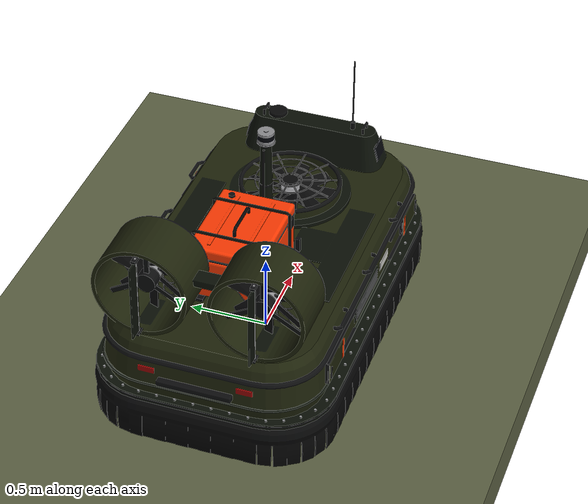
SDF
<?xml version="1.0"?>
<!-- GENERATED by hover_gazebo/scripts/gen_test_worlds_v2.py -->
<sdf version="1.9">
  <world name="v2_hover_test">
    <physics name="1ms" type="dart">
      <max_step_size>0.001</max_step_size>
      <real_time_factor>1.0</real_time_factor>
      <dart><collision_detector>bullet</collision_detector></dart>
    </physics>
    <gravity>0 0 -9.81</gravity>
    <spherical_coordinates>
      <surface_model>EARTH_WGS84</surface_model>
      <latitude_deg>1.4466</latitude_deg><longitude_deg>103.7300</longitude_deg>
      <elevation>0</elevation><heading_deg>0</heading_deg>
    </spherical_coordinates>

    <plugin filename="gz-sim-physics-system" name="gz::sim::systems::Physics"/>
    <plugin filename="gz-sim-user-commands-system" name="gz::sim::systems::UserCommands"/>
    <plugin filename="gz-sim-scene-broadcaster-system" name="gz::sim::systems::SceneBroadcaster"/>
    <plugin filename="gz-sim-imu-system" name="gz::sim::systems::Imu"/>
    <plugin filename="gz-sim-navsat-system" name="gz::sim::systems::NavSat"/>
    <plugin filename="gz-sim-sensors-system" name="gz::sim::systems::Sensors">
      <render_engine>ogre2</render_engine>
    </plugin>
    <plugin filename="tidal_vehicle_plugins" name="hover::TerrainZones">
      <ground_height>0.0</ground_height>
    </plugin>
    <plugin filename="tidal_vehicle_plugins" name="hover::ScriptedCommands">
      <command><time>0.5</time><topic>/model/hovercraft_v2/hover_enabled</topic><type>gz.msgs.Boolean</type><data>data: true</data></command>
      <command><time>3.0</time><topic>/model/hovercraft_v2/tracks_cmd</topic><type>gz.msgs.Double</type><data>data: 0.250</data></command>
      <command><time>26.0</time><topic>/model/hovercraft_v2/cmd_vel_hover</topic><type>gz.msgs.Twist</type><data>linear { x: 2.0 } angular { z: 0.0 }</data></command>
      <command><time>26.2</time><topic>/model/hovercraft_v2/cmd_vel_hover</topic><type>gz.msgs.Twist</type><data>linear { x: 2.0 } angular { z: 0.0 }</data></command>
      <command><time>26.4</time><topic>/model/hovercraft_v2/cmd_vel_hover</topic><type>gz.msgs.Twist</type><data>linear { x: 2.0 } angular { z: 0.0 }</data></command>
      <command><time>26.6</time><topic>/model/hovercraft_v2/cmd_vel_hover</topic><type>gz.msgs.Twist</type><data>linear { x: 2.0 } angular { z: 0.0 }</data></command>
      <command><time>26.8</time><topic>/model/hovercraft_v2/cmd_vel_hover</topic><type>gz.msgs.Twist</type><data>linear { x: 2.0 } angular { z: 0.0 }</data></command>
      <command><time>27.0</time><topic>/model/hovercraft_v2/cmd_vel_hover</topic><type>gz.msgs.Twist</type><data>linear { x: 2.0 } angular { z: 0.0 }</data></command>
      <command><time>27.2</time><topic>/model/hovercraft_v2/cmd_vel_hover</topic><type>gz.msgs.Twist</type><data>linear { x: 2.0 } angular { z: 0.0 }</data></command>
      <command><time>27.4</time><topic>/model/hovercraft_v2/cmd_vel_hover</topic><type>gz.msgs.Twist</type><data>linear { x: 2.0 } angular { z: 0.0 }</data></command>
      <command><time>27.6</time><topic>/model/hovercraft_v2/cmd_vel_hover</topic><type>gz.msgs.Twist</type><data>linear { x: 2.0 } angular { z: 0.0 }</data></command>
      <command><time>27.8</time><topic>/model/hovercraft_v2/cmd_vel_hover</topic><type>gz.msgs.Twist</type><data>linear { x: 2.0 } angular { z: 0.0 }</data></command>
      <command><time>28.0</time><topic>/model/hovercraft_v2/cmd_vel_hover</topic><type>gz.msgs.Twist</type><data>linear { x: 2.0 } angular { z: 0.0 }</data></command>
      <command><time>28.2</time><topic>/model/hovercraft_v2/cmd_vel_hover</topic><type>gz.msgs.Twist</type><data>linear { x: 2.0 } angular { z: 0.0 }</data></command>
      <command><time>28.4</time><topic>/model/hovercraft_v2/cmd_vel_hover</topic><type>gz.msgs.Twist</type><data>linear { x: 2.0 } angular { z: 0.0 }</data></command>
      <command><time>28.6</time><topic>/model/hovercraft_v2/cmd_vel_hover</topic><type>gz.msgs.Twist</type><data>linear { x: 2.0 } angular { z: 0.0 }</data></command>
      <command><time>28.8</time><topic>/model/hovercraft_v2/cmd_vel_hover</topic><type>gz.msgs.Twist</type><data>linear { x: 2.0 } angular { z: 0.0 }</data></command>
      <command><time>29.0</time><topic>/model/hovercraft_v2/cmd_vel_hover</topic><type>gz.msgs.Twist</type><data>linear { x: 2.0 } angular { z: 0.0 }</data></command>
      <command><time>29.2</time><topic>/model/hovercraft_v2/cmd_vel_hover</topic><type>gz.msgs.Twist</type><data>linear { x: 2.0 } angular { z: 0.0 }</data></command>
      <command><time>29.4</time><topic>/model/hovercraft_v2/cmd_vel_hover</topic><type>gz.msgs.Twist</type><data>linear { x: 2.0 } angular { z: 0.0 }</data></command>
      <command><time>29.6</time><topic>/model/hovercraft_v2/cmd_vel_hover</topic><type>gz.msgs.Twist</type><data>linear { x: 2.0 } angular { z: 0.0 }</data></command>
      <command><time>29.8</time><topic>/model/hovercraft_v2/cmd_vel_hover</topic><type>gz.msgs.Twist</type><data>linear { x: 2.0 } angular { z: 0.0 }</data></command>
      <command><time>30.0</time><topic>/model/hovercraft_v2/cmd_vel_hover</topic><type>gz.msgs.Twist</type><data>linear { x: 2.0 } angular { z: 0.0 }</data></command>
      <command><time>30.2</time><topic>/model/hovercraft_v2/cmd_vel_hover</topic><type>gz.msgs.Twist</type><data>linear { x: 2.0 } angular { z: 0.0 }</data></command>
      <command><time>30.4</time><topic>/model/hovercraft_v2/cmd_vel_hover</topic><type>gz.msgs.Twist</type><data>linear { x: 2.0 } angular { z: 0.0 }</data></command>
      <command><time>30.6</time><topic>/model/hovercraft_v2/cmd_vel_hover</topic><type>gz.msgs.Twist</type><data>linear { x: 2.0 } angular { z: 0.0 }</data></command>
      <command><time>30.8</time><topic>/model/hovercraft_v2/cmd_vel_hover</topic><type>gz.msgs.Twist</type><data>linear { x: 2.0 } angular { z: 0.0 }</data></command>
      <command><time>31.0</time><topic>/model/hovercraft_v2/cmd_vel_hover</topic><type>gz.msgs.Twist</type><data>linear { x: 2.0 } angular { z: 0.0 }</data></command>
      <command><time>31.2</time><topic>/model/hovercraft_v2/cmd_vel_hover</topic><type>gz.msgs.Twist</type><data>linear { x: 2.0 } angular { z: 0.0 }</data></command>
      <command><time>31.4</time><topic>/model/hovercraft_v2/cmd_vel_hover</topic><type>gz.msgs.Twist</type><data>linear { x: 2.0 } angular { z: 0.0 }</data></command>
      <command><time>31.6</time><topic>/model/hovercraft_v2/cmd_vel_hover</topic><type>gz.msgs.Twist</type><data>linear { x: 2.0 } angular { z: 0.0 }</data></command>
      <command><time>31.8</time><topic>/model/hovercraft_v2/cmd_vel_hover</topic><type>gz.msgs.Twist</type><data>linear { x: 2.0 } angular { z: 0.0 }</data></command>
      <command><time>32.0</time><topic>/model/hovercraft_v2/cmd_vel_hover</topic><type>gz.msgs.Twist</type><data>linear { x: 2.0 } angular { z: 0.0 }</data></command>
      <command><time>32.2</time><topic>/model/hovercraft_v2/cmd_vel_hover</topic><type>gz.msgs.Twist</type><data>linear { x: 2.0 } angular { z: 0.0 }</data></command>
      <command><time>32.4</time><topic>/model/hovercraft_v2/cmd_vel_hover</topic><type>gz.msgs.Twist</type><data>linear { x: 2.0 } angular { z: 0.0 }</data></command>
      <command><time>32.6</time><topic>/model/hovercraft_v2/cmd_vel_hover</topic><type>gz.msgs.Twist</type><data>linear { x: 2.0 } angular { z: 0.0 }</data></command>
      <command><time>32.8</time><topic>/model/hovercraft_v2/cmd_vel_hover</topic><type>gz.msgs.Twist</type><data>linear { x: 2.0 } angular { z: 0.0 }</data></command>
      <command><time>33.0</time><topic>/model/hovercraft_v2/cmd_vel_hover</topic><type>gz.msgs.Twist</type><data>linear { x: 2.0 } angular { z: 0.0 }</data></command>
      <command><time>33.2</time><topic>/model/hovercraft_v2/cmd_vel_hover</topic><type>gz.msgs.Twist</type><data>linear { x: 2.0 } angular { z: 0.0 }</data></command>
      <command><time>33.4</time><topic>/model/hovercraft_v2/cmd_vel_hover</topic><type>gz.msgs.Twist</type><data>linear { x: 2.0 } angular { z: 0.0 }</data></command>
      <command><time>33.6</time><topic>/model/hovercraft_v2/cmd_vel_hover</topic><type>gz.msgs.Twist</type><data>linear { x: 2.0 } angular { z: 0.0 }</data></command>
      <command><time>33.8</time><topic>/model/hovercraft_v2/cmd_vel_hover</topic><type>gz.msgs.Twist</type><data>linear { x: 2.0 } angular { z: 0.0 }</data></command>
      <command><time>34.0</time><topic>/model/hovercraft_v2/cmd_vel_hover</topic><type>gz.msgs.Twist</type><data>linear { x: 2.0 } angular { z: 0.0 }</data></command>
      <command><time>34.2</time><topic>/model/hovercraft_v2/cmd_vel_hover</topic><type>gz.msgs.Twist</type><data>linear { x: 2.0 } angular { z: 0.0 }</data></command>
      <command><time>34.4</time><topic>/model/hovercraft_v2/cmd_vel_hover</topic><type>gz.msgs.Twist</type><data>linear { x: 2.0 } angular { z: 0.0 }</data></command>
      <command><time>34.6</time><topic>/model/hovercraft_v2/cmd_vel_hover</topic><type>gz.msgs.Twist</type><data>linear { x: 2.0 } angular { z: 0.0 }</data></command>
      <command><time>34.8</time><topic>/model/hovercraft_v2/cmd_vel_hover</topic><type>gz.msgs.Twist</type><data>linear { x: 2.0 } angular { z: 0.0 }</data></command>
      <command><time>35.0</time><topic>/model/hovercraft_v2/cmd_vel_hover</topic><type>gz.msgs.Twist</type><data>linear { x: 2.0 } angular { z: 0.0 }</data></command>
      <command><time>35.2</time><topic>/model/hovercraft_v2/cmd_vel_hover</topic><type>gz.msgs.Twist</type><data>linear { x: 2.0 } angular { z: 0.0 }</data></command>
      <command><time>35.4</time><topic>/model/hovercraft_v2/cmd_vel_hover</topic><type>gz.msgs.Twist</type><data>linear { x: 2.0 } angular { z: 0.0 }</data></command>
      <command><time>35.6</time><topic>/model/hovercraft_v2/cmd_vel_hover</topic><type>gz.msgs.Twist</type><data>linear { x: 2.0 } angular { z: 0.0 }</data></command>
      <command><time>35.8</time><topic>/model/hovercraft_v2/cmd_vel_hover</topic><type>gz.msgs.Twist</type><data>linear { x: 2.0 } angular { z: 0.0 }</data></command>
      <command><time>36.0</time><topic>/model/hovercraft_v2/cmd_vel_hover</topic><type>gz.msgs.Twist</type><data>linear { x: 2.0 } angular { z: 0.0 }</data></command>
      <command><time>36.2</time><topic>/model/hovercraft_v2/cmd_vel_hover</topic><type>gz.msgs.Twist</type><data>linear { x: 2.0 } angular { z: 0.0 }</data></command>
      <command><time>36.4</time><topic>/model/hovercraft_v2/cmd_vel_hover</topic><type>gz.msgs.Twist</type><data>linear { x: 2.0 } angular { z: 0.0 }</data></command>
      <command><time>36.6</time><topic>/model/hovercraft_v2/cmd_vel_hover</topic><type>gz.msgs.Twist</type><data>linear { x: 2.0 } angular { z: 0.0 }</data></command>
      <command><time>36.8</time><topic>/model/hovercraft_v2/cmd_vel_hover</topic><type>gz.msgs.Twist</type><data>linear { x: 2.0 } angular { z: 0.0 }</data></command>
      <command><time>37.0</time><topic>/model/hovercraft_v2/cmd_vel_hover</topic><type>gz.msgs.Twist</type><data>linear { x: 2.0 } angular { z: 0.0 }</data></command>
      <command><time>37.2</time><topic>/model/hovercraft_v2/cmd_vel_hover</topic><type>gz.msgs.Twist</type><data>linear { x: 2.0 } angular { z: 0.0 }</data></command>
      <command><time>37.4</time><topic>/model/hovercraft_v2/cmd_vel_hover</topic><type>gz.msgs.Twist</type><data>linear { x: 2.0 } angular { z: 0.0 }</data></command>
      <command><time>37.6</time><topic>/model/hovercraft_v2/cmd_vel_hover</topic><type>gz.msgs.Twist</type><data>linear { x: 2.0 } angular { z: 0.0 }</data></command>
      <command><time>37.8</time><topic>/model/hovercraft_v2/cmd_vel_hover</topic><type>gz.msgs.Twist</type><data>linear { x: 2.0 } angular { z: 0.0 }</data></command>
      <command><time>38.0</time><topic>/model/hovercraft_v2/cmd_vel_hover</topic><type>gz.msgs.Twist</type><data>linear { x: 2.0 } angular { z: 0.0 }</data></command>
      <command><time>38.2</time><topic>/model/hovercraft_v2/cmd_vel_hover</topic><type>gz.msgs.Twist</type><data>linear { x: 2.0 } angular { z: 0.0 }</data></command>
      <command><time>38.4</time><topic>/model/hovercraft_v2/cmd_vel_hover</topic><type>gz.msgs.Twist</type><data>linear { x: 2.0 } angular { z: 0.0 }</data></command>
      <command><time>38.6</time><topic>/model/hovercraft_v2/cmd_vel_hover</topic><type>gz.msgs.Twist</type><data>linear { x: 2.0 } angular { z: 0.0 }</data></command>
      <command><time>38.8</time><topic>/model/hovercraft_v2/cmd_vel_hover</topic><type>gz.msgs.Twist</type><data>linear { x: 2.0 } angular { z: 0.0 }</data></command>
      <command><time>39.0</time><topic>/model/hovercraft_v2/cmd_vel_hover</topic><type>gz.msgs.Twist</type><data>linear { x: 2.0 } angular { z: 0.0 }</data></command>
      <command><time>39.2</time><topic>/model/hovercraft_v2/cmd_vel_hover</topic><type>gz.msgs.Twist</type><data>linear { x: 2.0 } angular { z: 0.0 }</data></command>
      <command><time>39.4</time><topic>/model/hovercraft_v2/cmd_vel_hover</topic><type>gz.msgs.Twist</type><data>linear { x: 2.0 } angular { z: 0.0 }</data></command>
      <command><time>39.6</time><topic>/model/hovercraft_v2/cmd_vel_hover</topic><type>gz.msgs.Twist</type><data>linear { x: 2.0 } angular { z: 0.0 }</data></command>
      <command><time>39.8</time><topic>/model/hovercraft_v2/cmd_vel_hover</topic><type>gz.msgs.Twist</type><data>linear { x: 2.0 } angular { z: 0.0 }</data></command>
      <command><time>40.0</time><topic>/model/hovercraft_v2/cmd_vel_hover</topic><type>gz.msgs.Twist</type><data>linear { x: 1.0 } angular { z: 0.5 }</data></command>
      <command><time>40.2</time><topic>/model/hovercraft_v2/cmd_vel_hover</topic><type>gz.msgs.Twist</type><data>linear { x: 1.0 } angular { z: 0.5 }</data></command>
      <command><time>40.4</time><topic>/model/hovercraft_v2/cmd_vel_hover</topic><type>gz.msgs.Twist</type><data>linear { x: 1.0 } angular { z: 0.5 }</data></command>
      <command><time>40.6</time><topic>/model/hovercraft_v2/cmd_vel_hover</topic><type>gz.msgs.Twist</type><data>linear { x: 1.0 } angular { z: 0.5 }</data></command>
      <command><time>40.8</time><topic>/model/hovercraft_v2/cmd_vel_hover</topic><type>gz.msgs.Twist</type><data>linear { x: 1.0 } angular { z: 0.5 }</data></command>
      <command><time>41.0</time><topic>/model/hovercraft_v2/cmd_vel_hover</topic><type>gz.msgs.Twist</type><data>linear { x: 1.0 } angular { z: 0.5 }</data></command>
      <command><time>41.2</time><topic>/model/hovercraft_v2/cmd_vel_hover</topic><type>gz.msgs.Twist</type><data>linear { x: 1.0 } angular { z: 0.5 }</data></command>
      <command><time>41.4</time><topic>/model/hovercraft_v2/cmd_vel_hover</topic><type>gz.msgs.Twist</type><data>linear { x: 1.0 } angular { z: 0.5 }</data></command>
      <command><time>41.6</time><topic>/model/hovercraft_v2/cmd_vel_hover</topic><type>gz.msgs.Twist</type><data>linear { x: 1.0 } angular { z: 0.5 }</data></command>
      <command><time>41.8</time><topic>/model/hovercraft_v2/cmd_vel_hover</topic><type>gz.msgs.Twist</type><data>linear { x: 1.0 } angular { z: 0.5 }</data></command>
      <command><time>42.0</time><topic>/model/hovercraft_v2/cmd_vel_hover</topic><type>gz.msgs.Twist</type><data>linear { x: 1.0 } angular { z: 0.5 }</data></command>
      <command><time>42.2</time><topic>/model/hovercraft_v2/cmd_vel_hover</topic><type>gz.msgs.Twist</type><data>linear { x: 1.0 } angular { z: 0.5 }</data></command>
      <command><time>42.4</time><topic>/model/hovercraft_v2/cmd_vel_hover</topic><type>gz.msgs.Twist</type><data>linear { x: 1.0 } angular { z: 0.5 }</data></command>
      <command><time>42.6</time><topic>/model/hovercraft_v2/cmd_vel_hover</topic><type>gz.msgs.Twist</type><data>linear { x: 1.0 } angular { z: 0.5 }</data></command>
      <command><time>42.8</time><topic>/model/hovercraft_v2/cmd_vel_hover</topic><type>gz.msgs.Twist</type><data>linear { x: 1.0 } angular { z: 0.5 }</data></command>
      <command><time>43.0</time><topic>/model/hovercraft_v2/cmd_vel_hover</topic><type>gz.msgs.Twist</type><data>linear { x: 1.0 } angular { z: 0.5 }</data></command>
      <command><time>43.2</time><topic>/model/hovercraft_v2/cmd_vel_hover</topic><type>gz.msgs.Twist</type><data>linear { x: 1.0 } angular { z: 0.5 }</data></command>
      <command><time>43.4</time><topic>/model/hovercraft_v2/cmd_vel_hover</topic><type>gz.msgs.Twist</type><data>linear { x: 1.0 } angular { z: 0.5 }</data></command>
      <command><time>43.6</time><topic>/model/hovercraft_v2/cmd_vel_hover</topic><type>gz.msgs.Twist</type><data>linear { x: 1.0 } angular { z: 0.5 }</data></command>
      <command><time>43.8</time><topic>/model/hovercraft_v2/cmd_vel_hover</topic><type>gz.msgs.Twist</type><data>linear { x: 1.0 } angular { z: 0.5 }</data></command>
      <command><time>44.0</time><topic>/model/hovercraft_v2/cmd_vel_hover</topic><type>gz.msgs.Twist</type><data>linear { x: 1.0 } angular { z: 0.5 }</data></command>
      <command><time>44.2</time><topic>/model/hovercraft_v2/cmd_vel_hover</topic><type>gz.msgs.Twist</type><data>linear { x: 1.0 } angular { z: 0.5 }</data></command>
      <command><time>44.4</time><topic>/model/hovercraft_v2/cmd_vel_hover</topic><type>gz.msgs.Twist</type><data>linear { x: 1.0 } angular { z: 0.5 }</data></command>
      <command><time>44.6</time><topic>/model/hovercraft_v2/cmd_vel_hover</topic><type>gz.msgs.Twist</type><data>linear { x: 1.0 } angular { z: 0.5 }</data></command>
      <command><time>44.8</time><topic>/model/hovercraft_v2/cmd_vel_hover</topic><type>gz.msgs.Twist</type><data>linear { x: 1.0 } angular { z: 0.5 }</data></command>
      <command><time>45.0</time><topic>/model/hovercraft_v2/cmd_vel_hover</topic><type>gz.msgs.Twist</type><data>linear { x: 1.0 } angular { z: 0.5 }</data></command>
      <command><time>45.2</time><topic>/model/hovercraft_v2/cmd_vel_hover</topic><type>gz.msgs.Twist</type><data>linear { x: 1.0 } angular { z: 0.5 }</data></command>
      <command><time>45.4</time><topic>/model/hovercraft_v2/cmd_vel_hover</topic><type>gz.msgs.Twist</type><data>linear { x: 1.0 } angular { z: 0.5 }</data></command>
      <command><time>45.6</time><topic>/model/hovercraft_v2/cmd_vel_hover</topic><type>gz.msgs.Twist</type><data>linear { x: 1.0 } angular { z: 0.5 }</data></command>
      <command><time>45.8</time><topic>/model/hovercraft_v2/cmd_vel_hover</topic><type>gz.msgs.Twist</type><data>linear { x: 1.0 } angular { z: 0.5 }</data></command>
      <command><time>46.0</time><topic>/model/hovercraft_v2/cmd_vel_hover</topic><type>gz.msgs.Twist</type><data>linear { x: 1.0 } angular { z: 0.5 }</data></command>
      <command><time>46.2</time><topic>/model/hovercraft_v2/cmd_vel_hover</topic><type>gz.msgs.Twist</type><data>linear { x: 1.0 } angular { z: 0.5 }</data></command>
      <command><time>46.4</time><topic>/model/hovercraft_v2/cmd_vel_hover</topic><type>gz.msgs.Twist</type><data>linear { x: 1.0 } angular { z: 0.5 }</data></command>
      <command><time>46.6</time><topic>/model/hovercraft_v2/cmd_vel_hover</topic><type>gz.msgs.Twist</type><data>linear { x: 1.0 } angular { z: 0.5 }</data></command>
      <command><time>46.8</time><topic>/model/hovercraft_v2/cmd_vel_hover</topic><type>gz.msgs.Twist</type><data>linear { x: 1.0 } angular { z: 0.5 }</data></command>
      <command><time>47.0</time><topic>/model/hovercraft_v2/cmd_vel_hover</topic><type>gz.msgs.Twist</type><data>linear { x: 1.0 } angular { z: 0.5 }</data></command>
      <command><time>47.2</time><topic>/model/hovercraft_v2/cmd_vel_hover</topic><type>gz.msgs.Twist</type><data>linear { x: 1.0 } angular { z: 0.5 }</data></command>
      <command><time>47.4</time><topic>/model/hovercraft_v2/cmd_vel_hover</topic><type>gz.msgs.Twist</type><data>linear { x: 1.0 } angular { z: 0.5 }</data></command>
      <command><time>47.6</time><topic>/model/hovercraft_v2/cmd_vel_hover</topic><type>gz.msgs.Twist</type><data>linear { x: 1.0 } angular { z: 0.5 }</data></command>
      <command><time>47.8</time><topic>/model/hovercraft_v2/cmd_vel_hover</topic><type>gz.msgs.Twist</type><data>linear { x: 1.0 } angular { z: 0.5 }</data></command>
      <command><time>48.0</time><topic>/model/hovercraft_v2/cmd_vel_hover</topic><type>gz.msgs.Twist</type><data>linear { x: 1.0 } angular { z: 0.5 }</data></command>
      <command><time>48.2</time><topic>/model/hovercraft_v2/cmd_vel_hover</topic><type>gz.msgs.Twist</type><data>linear { x: 1.0 } angular { z: 0.5 }</data></command>
      <command><time>48.4</time><topic>/model/hovercraft_v2/cmd_vel_hover</topic><type>gz.msgs.Twist</type><data>linear { x: 1.0 } angular { z: 0.5 }</data></command>
      <command><time>48.6</time><topic>/model/hovercraft_v2/cmd_vel_hover</topic><type>gz.msgs.Twist</type><data>linear { x: 1.0 } angular { z: 0.5 }</data></command>
      <command><time>48.8</time><topic>/model/hovercraft_v2/cmd_vel_hover</topic><type>gz.msgs.Twist</type><data>linear { x: 1.0 } angular { z: 0.5 }</data></command>
      <command><time>49.0</time><topic>/model/hovercraft_v2/cmd_vel_hover</topic><type>gz.msgs.Twist</type><data>linear { x: 1.0 } angular { z: 0.5 }</data></command>
      <command><time>49.2</time><topic>/model/hovercraft_v2/cmd_vel_hover</topic><type>gz.msgs.Twist</type><data>linear { x: 1.0 } angular { z: 0.5 }</data></command>
      <command><time>49.4</time><topic>/model/hovercraft_v2/cmd_vel_hover</topic><type>gz.msgs.Twist</type><data>linear { x: 1.0 } angular { z: 0.5 }</data></command>
      <command><time>49.6</time><topic>/model/hovercraft_v2/cmd_vel_hover</topic><type>gz.msgs.Twist</type><data>linear { x: 1.0 } angular { z: 0.5 }</data></command>
      <command><time>49.8</time><topic>/model/hovercraft_v2/cmd_vel_hover</topic><type>gz.msgs.Twist</type><data>linear { x: 1.0 } angular { z: 0.5 }</data></command>
      <command><time>50.0</time><topic>/model/hovercraft_v2/cmd_vel_hover</topic><type>gz.msgs.Twist</type><data>linear { x: 1.0 } angular { z: 0.5 }</data></command>
      <command><time>50.2</time><topic>/model/hovercraft_v2/cmd_vel_hover</topic><type>gz.msgs.Twist</type><data>linear { x: 1.0 } angular { z: 0.5 }</data></command>
      <command><time>50.4</time><topic>/model/hovercraft_v2/cmd_vel_hover</topic><type>gz.msgs.Twist</type><data>linear { x: 1.0 } angular { z: 0.5 }</data></command>
      <command><time>50.6</time><topic>/model/hovercraft_v2/cmd_vel_hover</topic><type>gz.msgs.Twist</type><data>linear { x: 1.0 } angular { z: 0.5 }</data></command>
      <command><time>50.8</time><topic>/model/hovercraft_v2/cmd_vel_hover</topic><type>gz.msgs.Twist</type><data>linear { x: 1.0 } angular { z: 0.5 }</data></command>
      <command><time>51.0</time><topic>/model/hovercraft_v2/cmd_vel_hover</topic><type>gz.msgs.Twist</type><data>linear { x: 1.0 } angular { z: 0.5 }</data></command>
      <command><time>51.2</time><topic>/model/hovercraft_v2/cmd_vel_hover</topic><type>gz.msgs.Twist</type><data>linear { x: 1.0 } angular { z: 0.5 }</data></command>
      <command><time>51.4</time><topic>/model/hovercraft_v2/cmd_vel_hover</topic><type>gz.msgs.Twist</type><data>linear { x: 1.0 } angular { z: 0.5 }</data></command>
      <command><time>51.6</time><topic>/model/hovercraft_v2/cmd_vel_hover</topic><type>gz.msgs.Twist</type><data>linear { x: 1.0 } angular { z: 0.5 }</data></command>
      <command><time>51.8</time><topic>/model/hovercraft_v2/cmd_vel_hover</topic><type>gz.msgs.Twist</type><data>linear { x: 1.0 } angular { z: 0.5 }</data></command>
      <command><time>52.0</time><topic>/model/hovercraft_v2/cmd_vel_hover</topic><type>gz.msgs.Twist</type><data>linear { x: 0.0 } angular { z: 0.0 }</data></command>
      <command><time>52.2</time><topic>/model/hovercraft_v2/cmd_vel_hover</topic><type>gz.msgs.Twist</type><data>linear { x: 0.0 } angular { z: 0.0 }</data></command>
      <command><time>52.4</time><topic>/model/hovercraft_v2/cmd_vel_hover</topic><type>gz.msgs.Twist</type><data>linear { x: 0.0 } angular { z: 0.0 }</data></command>
      <command><time>52.6</time><topic>/model/hovercraft_v2/cmd_vel_hover</topic><type>gz.msgs.Twist</type><data>linear { x: 0.0 } angular { z: 0.0 }</data></command>
      <command><time>52.8</time><topic>/model/hovercraft_v2/cmd_vel_hover</topic><type>gz.msgs.Twist</type><data>linear { x: 0.0 } angular { z: 0.0 }</data></command>
      <command><time>53.0</time><topic>/model/hovercraft_v2/cmd_vel_hover</topic><type>gz.msgs.Twist</type><data>linear { x: 0.0 } angular { z: 0.0 }</data></command>
      <command><time>53.2</time><topic>/model/hovercraft_v2/cmd_vel_hover</topic><type>gz.msgs.Twist</type><data>linear { x: 0.0 } angular { z: 0.0 }</data></command>
      <command><time>53.4</time><topic>/model/hovercraft_v2/cmd_vel_hover</topic><type>gz.msgs.Twist</type><data>linear { x: 0.0 } angular { z: 0.0 }</data></command>
      <command><time>53.6</time><topic>/model/hovercraft_v2/cmd_vel_hover</topic><type>gz.msgs.Twist</type><data>linear { x: 0.0 } angular { z: 0.0 }</data></command>
      <command><time>53.8</time><topic>/model/hovercraft_v2/cmd_vel_hover</topic><type>gz.msgs.Twist</type><data>linear { x: 0.0 } angular { z: 0.0 }</data></command>
      <command><time>54.0</time><topic>/model/hovercraft_v2/cmd_vel_hover</topic><type>gz.msgs.Twist</type><data>linear { x: 0.0 } angular { z: 0.0 }</data></command>
      <command><time>54.2</time><topic>/model/hovercraft_v2/cmd_vel_hover</topic><type>gz.msgs.Twist</type><data>linear { x: 0.0 } angular { z: 0.0 }</data></command>
      <command><time>54.4</time><topic>/model/hovercraft_v2/cmd_vel_hover</topic><type>gz.msgs.Twist</type><data>linear { x: 0.0 } angular { z: 0.0 }</data></command>
      <command><time>54.6</time><topic>/model/hovercraft_v2/cmd_vel_hover</topic><type>gz.msgs.Twist</type><data>linear { x: 0.0 } angular { z: 0.0 }</data></command>
      <command><time>54.8</time><topic>/model/hovercraft_v2/cmd_vel_hover</topic><type>gz.msgs.Twist</type><data>linear { x: 0.0 } angular { z: 0.0 }</data></command>
      <command><time>55.0</time><topic>/model/hovercraft_v2/cmd_vel_hover</topic><type>gz.msgs.Twist</type><data>linear { x: 0.0 } angular { z: 0.0 }</data></command>
      <command><time>55.2</time><topic>/model/hovercraft_v2/cmd_vel_hover</topic><type>gz.msgs.Twist</type><data>linear { x: 0.0 } angular { z: 0.0 }</data></command>
      <command><time>55.4</time><topic>/model/hovercraft_v2/cmd_vel_hover</topic><type>gz.msgs.Twist</type><data>linear { x: 0.0 } angular { z: 0.0 }</data></command>
      <command><time>55.6</time><topic>/model/hovercraft_v2/cmd_vel_hover</topic><type>gz.msgs.Twist</type><data>linear { x: 0.0 } angular { z: 0.0 }</data></command>
      <command><time>55.8</time><topic>/model/hovercraft_v2/cmd_vel_hover</topic><type>gz.msgs.Twist</type><data>linear { x: 0.0 } angular { z: 0.0 }</data></command>
      <command><time>56.0</time><topic>/model/hovercraft_v2/cmd_vel_hover</topic><type>gz.msgs.Twist</type><data>linear { x: 0.0 } angular { z: 0.0 }</data></command>
      <command><time>56.2</time><topic>/model/hovercraft_v2/cmd_vel_hover</topic><type>gz.msgs.Twist</type><data>linear { x: 0.0 } angular { z: 0.0 }</data></command>
      <command><time>56.4</time><topic>/model/hovercraft_v2/cmd_vel_hover</topic><type>gz.msgs.Twist</type><data>linear { x: 0.0 } angular { z: 0.0 }</data></command>
      <command><time>56.6</time><topic>/model/hovercraft_v2/cmd_vel_hover</topic><type>gz.msgs.Twist</type><data>linear { x: 0.0 } angular { z: 0.0 }</data></command>
      <command><time>56.8</time><topic>/model/hovercraft_v2/cmd_vel_hover</topic><type>gz.msgs.Twist</type><data>linear { x: 0.0 } angular { z: 0.0 }</data></command>
      <command><time>57.0</time><topic>/model/hovercraft_v2/cmd_vel_hover</topic><type>gz.msgs.Twist</type><data>linear { x: 0.0 } angular { z: 0.0 }</data></command>
      <command><time>57.2</time><topic>/model/hovercraft_v2/cmd_vel_hover</topic><type>gz.msgs.Twist</type><data>linear { x: 0.0 } angular { z: 0.0 }</data></command>
      <command><time>57.4</time><topic>/model/hovercraft_v2/cmd_vel_hover</topic><type>gz.msgs.Twist</type><data>linear { x: 0.0 } angular { z: 0.0 }</data></command>
      <command><time>57.6</time><topic>/model/hovercraft_v2/cmd_vel_hover</topic><type>gz.msgs.Twist</type><data>linear { x: 0.0 } angular { z: 0.0 }</data></command>
      <command><time>57.8</time><topic>/model/hovercraft_v2/cmd_vel_hover</topic><type>gz.msgs.Twist</type><data>linear { x: 0.0 } angular { z: 0.0 }</data></command>
      <command><time>58.0</time><topic>/model/hovercraft_v2/cmd_vel_hover</topic><type>gz.msgs.Twist</type><data>linear { x: 0.0 } angular { z: 0.0 }</data></command>
      <command><time>58.2</time><topic>/model/hovercraft_v2/cmd_vel_hover</topic><type>gz.msgs.Twist</type><data>linear { x: 0.0 } angular { z: 0.0 }</data></command>
      <command><time>58.4</time><topic>/model/hovercraft_v2/cmd_vel_hover</topic><type>gz.msgs.Twist</type><data>linear { x: 0.0 } angular { z: 0.0 }</data></command>
      <command><time>58.6</time><topic>/model/hovercraft_v2/cmd_vel_hover</topic><type>gz.msgs.Twist</type><data>linear { x: 0.0 } angular { z: 0.0 }</data></command>
      <command><time>58.8</time><topic>/model/hovercraft_v2/cmd_vel_hover</topic><type>gz.msgs.Twist</type><data>linear { x: 0.0 } angular { z: 0.0 }</data></command>
      <command><time>59.0</time><topic>/model/hovercraft_v2/cmd_vel_hover</topic><type>gz.msgs.Twist</type><data>linear { x: 0.0 } angular { z: 0.0 }</data></command>
      <command><time>59.2</time><topic>/model/hovercraft_v2/cmd_vel_hover</topic><type>gz.msgs.Twist</type><data>linear { x: 0.0 } angular { z: 0.0 }</data></command>
      <command><time>59.4</time><topic>/model/hovercraft_v2/cmd_vel_hover</topic><type>gz.msgs.Twist</type><data>linear { x: 0.0 } angular { z: 0.0 }</data></command>
      <command><time>59.6</time><topic>/model/hovercraft_v2/cmd_vel_hover</topic><type>gz.msgs.Twist</type><data>linear { x: 0.0 } angular { z: 0.0 }</data></command>
      <command><time>59.8</time><topic>/model/hovercraft_v2/cmd_vel_hover</topic><type>gz.msgs.Twist</type><data>linear { x: 0.0 } angular { z: 0.0 }</data></command>
      <command><time>60.0</time><topic>/model/hovercraft_v2/cmd_vel_hover</topic><type>gz.msgs.Twist</type><data>linear { x: 0.0 } angular { z: 0.0 }</data></command>
      <command><time>60.2</time><topic>/model/hovercraft_v2/cmd_vel_hover</topic><type>gz.msgs.Twist</type><data>linear { x: 0.0 } angular { z: 0.0 }</data></command>
      <command><time>60.4</time><topic>/model/hovercraft_v2/cmd_vel_hover</topic><type>gz.msgs.Twist</type><data>linear { x: 0.0 } angular { z: 0.0 }</data></command>
      <command><time>60.6</time><topic>/model/hovercraft_v2/cmd_vel_hover</topic><type>gz.msgs.Twist</type><data>linear { x: 0.0 } angular { z: 0.0 }</data></command>
      <command><time>60.8</time><topic>/model/hovercraft_v2/cmd_vel_hover</topic><type>gz.msgs.Twist</type><data>linear { x: 0.0 } angular { z: 0.0 }</data></command>
      <command><time>61.0</time><topic>/model/hovercraft_v2/cmd_vel_hover</topic><type>gz.msgs.Twist</type><data>linear { x: 0.0 } angular { z: 0.0 }</data></command>
      <command><time>61.2</time><topic>/model/hovercraft_v2/cmd_vel_hover</topic><type>gz.msgs.Twist</type><data>linear { x: 0.0 } angular { z: 0.0 }</data></command>
      <command><time>61.4</time><topic>/model/hovercraft_v2/cmd_vel_hover</topic><type>gz.msgs.Twist</type><data>linear { x: 0.0 } angular { z: 0.0 }</data></command>
      <command><time>61.6</time><topic>/model/hovercraft_v2/cmd_vel_hover</topic><type>gz.msgs.Twist</type><data>linear { x: 0.0 } angular { z: 0.0 }</data></command>
      <command><time>61.8</time><topic>/model/hovercraft_v2/cmd_vel_hover</topic><type>gz.msgs.Twist</type><data>linear { x: 0.0 } angular { z: 0.0 }</data></command>
    </plugin>

    <scene><ambient>0.5 0.5 0.5 1</ambient><background>0.7 0.8 0.9 1</background><grid>false</grid></scene>
    <light type="directional" name="sun">
      <cast_shadows>true</cast_shadows><pose>0 0 10 0 0 0</pose>
      <diffuse>0.9 0.9 0.85 1</diffuse><specular>0.2 0.2 0.2 1</specular>
      <direction>-0.4 0.3 -0.9</direction>
    </light>

    <model name="ground">
      <static>true</static>
      <pose>50.0 0.0 -0.15 0 0 0</pose>
      <link name="link">
        <collision name="c">
          <geometry><box><size>140 120 0.3</size></box></geometry>
          <surface><friction><ode><mu>1.0</mu><mu2>1.0</mu2></ode></friction></surface>
        </collision>
        <visual name="v">
          <geometry><box><size>140 120 0.3</size></box></geometry>
          <material><ambient>0.36 0.38 0.26 1</ambient><diffuse>0.36 0.38 0.26 1</diffuse>
            <specular>0.05 0.05 0.05 1</specular></material>
        </visual>
      </link>
    </model>
    <include>
      <uri>model://hovercraft_v2</uri>
      <name>hovercraft_v2</name>
      <pose>0 0 0.002 0 0 0.0</pose>
    </include>
  </world>
</sdf>

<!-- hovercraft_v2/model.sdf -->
<!-- GENERATED by tidal_vehicle_description/scripts/gen_description_v2.py from link_frames.json. Do not edit by hand. -->
<!-- Vehicle Version 2. Model frame: ground plane under hull centre; vehicle standing on its deployed tracks. -->
<!-- Total mass 300.00 kg; hull CoM offset 0.200418 0 -0.08; vehicle CoM height 0.457 m (TRACK mode). -->
<sdf version="1.9">
  <model name="hovercraft_v2">
    <self_collide>false</self_collide>

    <link name="base_link">
      <pose>0 0 0.5 0 0 0</pose>
      <inertial>
        <pose>0.200418 0 -0.08 0 0 0</pose>
        <mass>145.8</mass>
        <inertia><ixx>19.44</ixx><ixy>0</ixy><ixz>0</ixz>
                 <iyy>66.2175</iyy><iyz>0</iyz><izz>81.7695</izz></inertia>
      </inertial>
      <visual name="visual">
        <geometry><mesh><uri>model://hovercraft_v2/meshes/hull.dae</uri></mesh></geometry>
      </visual>
      <collision name="collision">
        <pose>0 0 0.01 0 0 0</pose>
        <geometry><box><size>2.3 1.2 0.4</size></box></geometry>
        <surface><friction><ode><mu>0.3</mu><mu2>0.3</mu2></ode></friction></surface>
      </collision>
      <sensor name="imu" type="imu"><pose>0 0 0 0 0 0</pose><gz_frame_id>imu_link</gz_frame_id>
        <always_on>1</always_on><update_rate>50</update_rate><topic>__default__</topic>
      </sensor>
      <sensor name="navsat" type="navsat"><pose>0.93 0.25 0.48 0 0 0</pose><gz_frame_id>base_link</gz_frame_id>
        <always_on>1</always_on><update_rate>10</update_rate>
      </sensor>
      <sensor name="ranger_fl" type="gpu_lidar"><pose>1 0.5 -0.2 0 1.5708 0</pose><gz_frame_id>base_link</gz_frame_id>
        <always_on>0</always_on><update_rate>10</update_rate>
        <!-- 5 rays over +/-3 deg (a narrow ToF beam). A single-sample gpu_lidar
             returns wrong ranges in gz-sensors 8, so don't use samples = 1. -->
        <lidar><scan><horizontal><samples>5</samples><resolution>1</resolution>
          <min_angle>-0.05</min_angle><max_angle>0.05</max_angle></horizontal></scan>
          <range><min>0.01</min><max>2.0</max><resolution>0.001</resolution></range></lidar>
      </sensor>
      <sensor name="ranger_fr" type="gpu_lidar"><pose>1 -0.5 -0.2 0 1.5708 0</pose><gz_frame_id>base_link</gz_frame_id>
        <always_on>0</always_on><update_rate>10</update_rate>
        <!-- 5 rays over +/-3 deg (a narrow ToF beam). A single-sample gpu_lidar
             returns wrong ranges in gz-sensors 8, so don't use samples = 1. -->
        <lidar><scan><horizontal><samples>5</samples><resolution>1</resolution>
          <min_angle>-0.05</min_angle><max_angle>0.05</max_angle></horizontal></scan>
          <range><min>0.01</min><max>2.0</max><resolution>0.001</resolution></range></lidar>
      </sensor>
      <sensor name="ranger_rl" type="gpu_lidar"><pose>-1 0.5 -0.2 0 1.5708 0</pose><gz_frame_id>base_link</gz_frame_id>
        <always_on>0</always_on><update_rate>10</update_rate>
        <!-- 5 rays over +/-3 deg (a narrow ToF beam). A single-sample gpu_lidar
             returns wrong ranges in gz-sensors 8, so don't use samples = 1. -->
        <lidar><scan><horizontal><samples>5</samples><resolution>1</resolution>
          <min_angle>-0.05</min_angle><max_angle>0.05</max_angle></horizontal></scan>
          <range><min>0.01</min><max>2.0</max><resolution>0.001</resolution></range></lidar>
      </sensor>
      <sensor name="ranger_rr" type="gpu_lidar"><pose>-1 -0.5 -0.2 0 1.5708 0</pose><gz_frame_id>base_link</gz_frame_id>
        <always_on>0</always_on><update_rate>10</update_rate>
        <!-- 5 rays over +/-3 deg (a narrow ToF beam). A single-sample gpu_lidar
             returns wrong ranges in gz-sensors 8, so don't use samples = 1. -->
        <lidar><scan><horizontal><samples>5</samples><resolution>1</resolution>
          <min_angle>-0.05</min_angle><max_angle>0.05</max_angle></horizontal></scan>
          <range><min>0.01</min><max>2.0</max><resolution>0.001</resolution></range></lidar>
      </sensor>
    </link>
    <link name="skirt">
      <pose>0 0 0.23 0 0 0</pose>
      <inertial>
        <pose>0 0 -0.03 0 0 0</pose>
        <mass>18.0</mass>
        <inertia><ixx>3.4614</ixx><ixy>0</ixy><ixz>0</ixz>
                 <iyy>9.4614</iyy><iyz>0</iyz><izz>12.75</izz></inertia>
      </inertial>
      <visual name="visual">
        <geometry><mesh><uri>model://hovercraft_v2/meshes/skirt.dae</uri></mesh></geometry>
      </visual>
      <collision name="collision">
        <pose>0 0 -0.03 0 0 0</pose>
        <geometry><box><size>2.5 1.5 0.24</size></box></geometry>
        <surface><friction><ode><mu>0.2</mu><mu2>0.2</mu2></ode></friction></surface>
      </collision>
    </link>
    <link name="lift_fan">
      <pose>0.45 0 0.74 0 0 0</pose>
      <inertial>
        <pose>0 0 0 0 0 0</pose>
        <mass>12.0</mass>
        <inertia><ixx>0.2368</ixx><ixy>0</ixy><ixz>0</ixz>
                 <iyy>0.2368</iyy><iyz>0</iyz><izz>0.4704</izz></inertia>
      </inertial>
      <visual name="visual">
        <geometry><mesh><uri>model://hovercraft_v2/meshes/lift_fan.dae</uri></mesh></geometry>
      </visual>
    </link>
    <link name="thrust_fan_left">
      <pose>-0.93 0.35 1.03 0 0 0</pose>
      <inertial>
        <pose>0 0 0 0 0 0</pose>
        <mass>10.0</mass>
        <inertia><ixx>0.3125</ixx><ixy>0</ixy><ixz>0</ixz>
                 <iyy>0.157583</iyy><iyz>0</iyz><izz>0.157583</izz></inertia>
      </inertial>
      <visual name="visual">
        <geometry><mesh><uri>model://hovercraft_v2/meshes/thrust_fan_left.dae</uri></mesh></geometry>
      </visual>
    </link>
    <link name="thrust_fan_right">
      <pose>-0.93 -0.35 1.03 0 0 0</pose>
      <inertial>
        <pose>0 0 0 0 0 0</pose>
        <mass>10.0</mass>
        <inertia><ixx>0.3125</ixx><ixy>0</ixy><ixz>0</ixz>
                 <iyy>0.157583</iyy><iyz>0</iyz><izz>0.157583</izz></inertia>
      </inertial>
      <visual name="visual">
        <geometry><mesh><uri>model://hovercraft_v2/meshes/thrust_fan_right.dae</uri></mesh></geometry>
      </visual>
    </link>
    <link name="rudder_left">
      <pose>-1.17 0.35 1.03 0 0 0</pose>
      <inertial>
        <pose>-0.038 0 0 0 0 0</pose>
        <mass>1.5</mass>
        <inertia><ixx>0.031268</ixx><ixy>0</ixy><ixz>0</ixz>
                 <iyy>0.0325</iyy><iyz>0</iyz><izz>0.001268</izz></inertia>
      </inertial>
      <visual name="visual">
        <geometry><mesh><uri>model://hovercraft_v2/meshes/rudder_left.dae</uri></mesh></geometry>
      </visual>
    </link>
    <link name="rudder_right">
      <pose>-1.17 -0.35 1.03 0 0 0</pose>
      <inertial>
        <pose>-0.038 0 0 0 0 0</pose>
        <mass>1.5</mass>
        <inertia><ixx>0.031268</ixx><ixy>0</ixy><ixz>0</ixz>
                 <iyy>0.0325</iyy><iyz>0</iyz><izz>0.001268</izz></inertia>
      </inertial>
      <visual name="visual">
        <geometry><mesh><uri>model://hovercraft_v2/meshes/rudder_right.dae</uri></mesh></geometry>
      </visual>
    </link>
    <link name="track_left">
      <pose>0 0.42 0.14 0 0 0</pose>
      <inertial>
        <pose>0 0 0 0 0 0</pose>
        <mass>34.0</mass>
        <inertia><ixx>0.444267</ixx><ixy>0</ixy><ixz>0</ixz>
                 <iyy>5.77547</iyy><iyz>0</iyz><izz>5.77547</izz></inertia>
      </inertial>
      <visual name="visual">
        <geometry><mesh><uri>model://hovercraft_v2/meshes/track_left.dae</uri></mesh></geometry>
      </visual>
      <collision name="collision">
        <pose>0 0 0 0 0 0</pose>
        <geometry><box><size>1.4 0.28 0.28</size></box></geometry>
        <surface><friction><ode><mu>1.0</mu><mu2>1.0</mu2></ode></friction></surface>
      </collision>
      <collision name="collision_1">
        <pose>0.7 0 0 1.5708 0 0</pose>
        <geometry><cylinder><radius>0.14</radius><length>0.28</length></cylinder></geometry>
        <surface><friction><ode><mu>1.0</mu><mu2>1.0</mu2></ode></friction></surface>
      </collision>
      <collision name="collision_2">
        <pose>-0.7 0 0 1.5708 0 0</pose>
        <geometry><cylinder><radius>0.14</radius><length>0.28</length></cylinder></geometry>
        <surface><friction><ode><mu>1.0</mu><mu2>1.0</mu2></ode></friction></surface>
      </collision>
    </link>
    <link name="track_right">
      <pose>0 -0.42 0.14 0 0 0</pose>
      <inertial>
        <pose>0 0 0 0 0 0</pose>
        <mass>34.0</mass>
        <inertia><ixx>0.444267</ixx><ixy>0</ixy><ixz>0</ixz>
                 <iyy>5.77547</iyy><iyz>0</iyz><izz>5.77547</izz></inertia>
      </inertial>
      <visual name="visual">
        <geometry><mesh><uri>model://hovercraft_v2/meshes/track_right.dae</uri></mesh></geometry>
      </visual>
      <collision name="collision">
        <pose>0 0 0 0 0 0</pose>
        <geometry><box><size>1.4 0.28 0.28</size></box></geometry>
        <surface><friction><ode><mu>1.0</mu><mu2>1.0</mu2></ode></friction></surface>
      </collision>
      <collision name="collision_1">
        <pose>0.7 0 0 1.5708 0 0</pose>
        <geometry><cylinder><radius>0.14</radius><length>0.28</length></cylinder></geometry>
        <surface><friction><ode><mu>1.0</mu><mu2>1.0</mu2></ode></friction></surface>
      </collision>
      <collision name="collision_2">
        <pose>-0.7 0 0 1.5708 0 0</pose>
        <geometry><cylinder><radius>0.14</radius><length>0.28</length></cylinder></geometry>
        <surface><friction><ode><mu>1.0</mu><mu2>1.0</mu2></ode></friction></surface>
      </collision>
    </link>
    <link name="puff_bow_left">
      <pose>0.74 0.7 0.51 0 0 0</pose>
      <inertial>
        <pose>0 0 0 0 0 0</pose>
        <mass>0.5</mass>
        <inertia><ixx>0.000818167</ixx><ixy>0</ixy><ixz>0</ixz>
                 <iyy>0.00363333</iyy><iyz>0</iyz><izz>0.00281817</izz></inertia>
      </inertial>
      <visual name="visual">
        <geometry><mesh><uri>model://hovercraft_v2/meshes/puff_bow_left.dae</uri></mesh></geometry>
      </visual>
    </link>
    <link name="puff_bow_right">
      <pose>0.74 -0.7 0.51 0 0 0</pose>
      <inertial>
        <pose>0 0 0 0 0 0</pose>
        <mass>0.5</mass>
        <inertia><ixx>0.000818167</ixx><ixy>0</ixy><ixz>0</ixz>
                 <iyy>0.00363333</iyy><iyz>0</iyz><izz>0.00281817</izz></inertia>
      </inertial>
      <visual name="visual">
        <geometry><mesh><uri>model://hovercraft_v2/meshes/puff_bow_right.dae</uri></mesh></geometry>
      </visual>
    </link>
    <link name="puff_stern_left">
      <pose>-0.74 0.7 0.51 0 0 0</pose>
      <inertial>
        <pose>0 0 0 0 0 0</pose>
        <mass>0.5</mass>
        <inertia><ixx>0.000818167</ixx><ixy>0</ixy><ixz>0</ixz>
                 <iyy>0.00363333</iyy><iyz>0</iyz><izz>0.00281817</izz></inertia>
      </inertial>
      <visual name="visual">
        <geometry><mesh><uri>model://hovercraft_v2/meshes/puff_stern_left.dae</uri></mesh></geometry>
      </visual>
    </link>
    <link name="puff_stern_right">
      <pose>-0.74 -0.7 0.51 0 0 0</pose>
      <inertial>
        <pose>0 0 0 0 0 0</pose>
        <mass>0.5</mass>
        <inertia><ixx>0.000818167</ixx><ixy>0</ixy><ixz>0</ixz>
                 <iyy>0.00363333</iyy><iyz>0</iyz><izz>0.00281817</izz></inertia>
      </inertial>
      <visual name="visual">
        <geometry><mesh><uri>model://hovercraft_v2/meshes/puff_stern_right.dae</uri></mesh></geometry>
      </visual>
    </link>
    <link name="payload_box">
      <pose>-0.42 0 0.74 0 0 0</pose>
      <inertial>
        <pose>0 0 0.175 0 0 0</pose>
        <mass>30.0</mass>
        <inertia><ixx>0.8125</ixx><ixy>0</ixy><ixz>0</ixz>
                 <iyy>1.20625</iyy><iyz>0</iyz><izz>1.40625</izz></inertia>
      </inertial>
      <visual name="visual">
        <geometry><mesh><uri>model://hovercraft_v2/meshes/payload_box.dae</uri></mesh></geometry>
      </visual>
      <collision name="collision">
        <pose>0 0 0.175 0 0 0</pose>
        <geometry><box><size>0.6 0.45 0.35</size></box></geometry>
        <surface><friction><ode><mu>0.5</mu><mu2>0.5</mu2></ode></friction></surface>
      </collision>
    </link>
    <link name="lidar_link">
      <pose>0 0 1.44 0 0 0</pose>
      <inertial>
        <pose>0 0 0 0 0 0</pose>
        <mass>1.0</mass>
        <inertia><ixx>0.00109147</ixx><ixy>0</ixy><ixz>0</ixz>
                 <iyy>0.00109147</iyy><iyz>0</iyz><izz>0.00132612</izz></inertia>
      </inertial>
      <visual name="visual">
        <geometry><mesh><uri>model://hovercraft_v2/meshes/lidar.dae</uri></mesh></geometry>
      </visual>
      <collision name="collision">
        <pose>0 0 0 0 0 0</pose>
        <geometry><cylinder><radius>0.0515</radius><length>0.0717</length></cylinder></geometry>
        <surface><friction><ode><mu>0.5</mu><mu2>0.5</mu2></ode></friction></surface>
      </collision>
      <sensor name="lidar_3d" type="gpu_lidar"><pose>0 0 0 0 0 0</pose><gz_frame_id>lidar_link</gz_frame_id>
        <always_on>1</always_on><update_rate>5</update_rate><visualize>0</visualize>
        <lidar>
          <scan>
            <horizontal><samples>360</samples><resolution>1</resolution>
              <min_angle>-3.14159</min_angle><max_angle>3.14159</max_angle></horizontal>
            <vertical><samples>8</samples><resolution>1</resolution>
              <min_angle>-0.26180</min_angle>
              <max_angle>0.26180</max_angle></vertical>
          </scan>
          <range><min>0.3</min><max>30.0</max><resolution>0.01</resolution></range>
          <noise><type>gaussian</type><mean>0</mean><stddev>0.01</stddev></noise>
        </lidar>
      </sensor>
    </link>
    <link name="camera_link">
      <pose>1.07 0 0.8 0 0 0</pose>
      <inertial>
        <pose>-0.055 0 0 0 0 0</pose>
        <mass>0.2</mass>
        <inertia><ixx>0.000295417</ixx><ixy>0</ixy><ixz>0</ixz>
                 <iyy>0.0001875</iyy><iyz>0</iyz><izz>0.000295417</izz></inertia>
      </inertial>
      <visual name="visual">
        <geometry><mesh><uri>model://hovercraft_v2/meshes/camera.dae</uri></mesh></geometry>
      </visual>
      <collision name="collision">
        <pose>-0.055 0 0 0 0 0</pose>
        <geometry><box><size>0.075 0.11 0.075</size></box></geometry>
        <surface><friction><ode><mu>0.5</mu><mu2>0.5</mu2></ode></friction></surface>
      </collision>
      <!-- Operator-camera profile: sufficient for scene awareness while
           avoiding a high-resolution render every simulation tick. -->
      <sensor name="front_camera" type="camera"><pose>0 0 0 0 0 0</pose><gz_frame_id>camera_link</gz_frame_id>
        <always_on>1</always_on><update_rate>5</update_rate>
        <camera><horizontal_fov>1.40</horizontal_fov>
          <image><width>320</width><height>240</height><format>R8G8B8</format></image>
          <clip><near>0.05</near><far>60</far></clip></camera>
      </sensor>
    </link>

    <joint name="skirt_joint" type="fixed">
      <parent>base_link</parent>
      <child>skirt</child>
    </joint>
    <joint name="lift_fan_joint" type="revolute">
      <parent>base_link</parent>
      <child>lift_fan</child>
      <axis>
        <xyz>0 0 1</xyz>
        <limit><lower>-1e16</lower><upper>1e16</upper><effort>20</effort></limit>
        <dynamics><damping>0.01</damping></dynamics>
      </axis>
    </joint>
    <joint name="thrust_fan_left_joint" type="revolute">
      <parent>base_link</parent>
      <child>thrust_fan_left</child>
      <axis>
        <xyz>1 0 0</xyz>
        <limit><lower>-1e16</lower><upper>1e16</upper><effort>20</effort></limit>
        <dynamics><damping>0.01</damping></dynamics>
      </axis>
    </joint>
    <joint name="thrust_fan_right_joint" type="revolute">
      <parent>base_link</parent>
      <child>thrust_fan_right</child>
      <axis>
        <xyz>1 0 0</xyz>
        <limit><lower>-1e16</lower><upper>1e16</upper><effort>20</effort></limit>
        <dynamics><damping>0.01</damping></dynamics>
      </axis>
    </joint>
    <joint name="rudder_left_joint" type="revolute">
      <parent>base_link</parent>
      <child>rudder_left</child>
      <axis>
        <xyz>0 0 1</xyz>
        <limit><lower>-0.5236</lower><upper>0.5236</upper><effort>20</effort></limit>
        <dynamics><damping>0.5</damping></dynamics>
      </axis>
    </joint>
    <joint name="rudder_right_joint" type="revolute">
      <parent>base_link</parent>
      <child>rudder_right</child>
      <axis>
        <xyz>0 0 1</xyz>
        <limit><lower>-0.5236</lower><upper>0.5236</upper><effort>20</effort></limit>
        <dynamics><damping>0.5</damping></dynamics>
      </axis>
    </joint>
    <joint name="track_left_joint" type="prismatic">
      <parent>base_link</parent>
      <child>track_left</child>
      <axis>
        <xyz>0 0 1</xyz>
        <limit><lower>-0.02</lower><upper>0.27</upper><effort>6000.0</effort></limit>
        <dynamics><damping>200.0</damping></dynamics>
      </axis>
    </joint>
    <joint name="track_right_joint" type="prismatic">
      <parent>base_link</parent>
      <child>track_right</child>
      <axis>
        <xyz>0 0 1</xyz>
        <limit><lower>-0.02</lower><upper>0.27</upper><effort>6000.0</effort></limit>
        <dynamics><damping>200.0</damping></dynamics>
      </axis>
    </joint>
    <joint name="puff_bow_left_joint" type="prismatic">
      <parent>base_link</parent>
      <child>puff_bow_left</child>
      <axis>
        <xyz>-1 0 0</xyz>
        <limit><lower>-0.02</lower><upper>0.28</upper><effort>20</effort></limit>
        <dynamics><damping>1.0</damping></dynamics>
      </axis>
    </joint>
    <joint name="puff_bow_right_joint" type="prismatic">
      <parent>base_link</parent>
      <child>puff_bow_right</child>
      <axis>
        <xyz>-1 0 0</xyz>
        <limit><lower>-0.02</lower><upper>0.28</upper><effort>20</effort></limit>
        <dynamics><damping>1.0</damping></dynamics>
      </axis>
    </joint>
    <joint name="puff_stern_left_joint" type="prismatic">
      <parent>base_link</parent>
      <child>puff_stern_left</child>
      <axis>
        <xyz>1 0 0</xyz>
        <limit><lower>-0.02</lower><upper>0.28</upper><effort>20</effort></limit>
        <dynamics><damping>1.0</damping></dynamics>
      </axis>
    </joint>
    <joint name="puff_stern_right_joint" type="prismatic">
      <parent>base_link</parent>
      <child>puff_stern_right</child>
      <axis>
        <xyz>1 0 0</xyz>
        <limit><lower>-0.02</lower><upper>0.28</upper><effort>20</effort></limit>
        <dynamics><damping>1.0</damping></dynamics>
      </axis>
    </joint>
    <joint name="payload_box_joint" type="fixed">
      <parent>base_link</parent>
      <child>payload_box</child>
    </joint>
    <joint name="lidar_joint" type="fixed">
      <parent>base_link</parent>
      <child>lidar_link</child>
    </joint>
    <joint name="camera_joint" type="fixed">
      <parent>base_link</parent>
      <child>camera_link</child>
    </joint>

    <plugin filename="tidal_vehicle_plugins" name="hover::AirCushion">
      <link_name>base_link</link_name>
      <corner>0.935 0.480 -0.470</corner><corner>0.935 -0.480 -0.470</corner><corner>-0.935 0.480 -0.470</corner><corner>-0.935 -0.480 -0.470</corner>
      <target_gap>0.05</target_gap>
      <stiffness>18000</stiffness>
      <damping>800</damping>
      <max_force_factor>2.0</max_force_factor>
      <spinup_time>2.0</spinup_time>
      <glide_linear_drag>50</glide_linear_drag>
      <glide_quadratic_drag>25</glide_quadratic_drag>
      <glide_yaw_drag>200</glide_yaw_drag>
      <glide_lateral_factor>3</glide_lateral_factor>
      <max_thrust>200</max_thrust>
      <thrust_time_constant>0.4</thrust_time_constant>
      <!-- reversible ducted fans (AGENTS.md): 80 % reverse thrust, so the vehicle
           can brake and hold station on the corridor's ~5 deg shore incline -->
      <reverse_thrust_fraction>0.8</reverse_thrust_fraction>
      <yaw_reserve_fraction>0.3</yaw_reserve_fraction>
      <thrust_point_left>-0.93 0.35 0.53</thrust_point_left>
      <thrust_point_right>-0.93 -0.35 0.53</thrust_point_right>
      <rudder_point>-1.17 0 0.53</rudder_point>
      <mud_viscous_drag>1800</mud_viscous_drag>
      <mud_rolling_resistance>0.25</mud_rolling_resistance>
      <mud_yaw_drag>1000</mud_yaw_drag>
      <water_hull_drag>720</water_hull_drag>
      <water_yaw_drag>500</water_yaw_drag>
      <vent_length>0.06</vent_length>
      <rudder_wash_coeff>0.55</rudder_wash_coeff>
      <rudder_control>true</rudder_control>
      <rudder_max_angle>0.4363</rudder_max_angle>
      <rudder_min_thrust>60</rudder_min_thrust>
      <rudder_rate>1.5</rudder_rate>
      <!-- puff ports: bow/stern side vents of cushion air, 2*Cd*p*A each -->
      <puff_port_force>37.5</puff_port_force>
      <puff_port_point>0.74 0.6974 0.01</puff_port_point>
      <puff_port_time_constant>0.15</puff_port_time_constant>
      <puff_lateral_gain>150</puff_lateral_gain>
      <puff_shutter_travel>0.26</puff_shutter_travel>
      <heading_kp>600</heading_kp><heading_kd>400</heading_kd>
      <speed_kp>480</speed_kp><speed_ki>120</speed_ki><yaw_rate_kp>400</yaw_rate_kp>
      <cmd_timeout>0.5</cmd_timeout>
      <use_raycast>true</use_raycast>
      <log_file>/tmp/hover_{model}.csv</log_file>
      <log_joint>track_left_joint</log_joint><log_joint>track_right_joint</log_joint>
      <log_joint>rudder_left_joint</log_joint><log_joint>puff_bow_right_joint</log_joint>
    </plugin>

    <plugin filename="gz-sim-track-controller-system" name="gz::sim::systems::TrackController">
      <link>track_left</link>
      <min_velocity>-1.92</min_velocity>
      <max_velocity>1.92</max_velocity>
    </plugin>
    <plugin filename="gz-sim-track-controller-system" name="gz::sim::systems::TrackController">
      <link>track_right</link>
      <min_velocity>-1.92</min_velocity>
      <max_velocity>1.92</max_velocity>
    </plugin>
    <plugin filename="gz-sim-tracked-vehicle-system" name="gz::sim::systems::TrackedVehicle">
      <left_track><link>track_left</link></left_track>
      <right_track><link>track_right</link></right_track>
      <tracks_separation>0.840</tracks_separation>
      <tracks_height>0.280</tracks_height>
      <steering_efficiency>0.5</steering_efficiency>
      <linear_velocity><min_velocity>-1.5</min_velocity><max_velocity>1.5</max_velocity>
        <min_acceleration>-1.5</min_acceleration><max_acceleration>1.0</max_acceleration></linear_velocity>
      <angular_velocity><min_velocity>-1.0</min_velocity><max_velocity>1.0</max_velocity>
        <min_acceleration>-2.0</min_acceleration><max_acceleration>2.0</max_acceleration></angular_velocity>
      <odom_topic>internal/track_odometry</odom_topic><tf_topic>internal/track_tf</tf_topic>
      <odom_publish_frequency>20</odom_publish_frequency>
    </plugin>

    <plugin filename="gz-sim-joint-position-controller-system" name="gz::sim::systems::JointPositionController">
      <joint_name>track_left_joint</joint_name>
      <sub_topic>tracks_cmd</sub_topic>
      <use_velocity_commands>true</use_velocity_commands>
      <p_gain>4.0</p_gain><i_gain>0</i_gain><d_gain>0</d_gain>
      <cmd_max>0.2</cmd_max><cmd_min>-0.2</cmd_min>
      <initial_position>0</initial_position>
    </plugin>
    <plugin filename="gz-sim-joint-position-controller-system" name="gz::sim::systems::JointPositionController">
      <joint_name>track_right_joint</joint_name>
      <sub_topic>tracks_cmd</sub_topic>
      <use_velocity_commands>true</use_velocity_commands>
      <p_gain>4.0</p_gain><i_gain>0</i_gain><d_gain>0</d_gain>
      <cmd_max>0.2</cmd_max><cmd_min>-0.2</cmd_min>
      <initial_position>0</initial_position>
    </plugin>
    <plugin filename="gz-sim-joint-position-controller-system" name="gz::sim::systems::JointPositionController">
      <joint_name>rudder_left_joint</joint_name><sub_topic>rudder_left_cmd</sub_topic>
      <p_gain>20</p_gain><d_gain>0.5</d_gain>
      <cmd_max>20</cmd_max><cmd_min>-20</cmd_min>
    </plugin>
    <plugin filename="gz-sim-joint-position-controller-system" name="gz::sim::systems::JointPositionController">
      <joint_name>rudder_right_joint</joint_name><sub_topic>rudder_right_cmd</sub_topic>
      <p_gain>20</p_gain><d_gain>0.5</d_gain>
      <cmd_max>20</cmd_max><cmd_min>-20</cmd_min>
    </plugin>
    <plugin filename="gz-sim-joint-position-controller-system" name="gz::sim::systems::JointPositionController">
      <joint_name>puff_bow_left_joint</joint_name><sub_topic>puff_bow_left_cmd</sub_topic>
      <use_velocity_commands>true</use_velocity_commands>
      <p_gain>10.0</p_gain><i_gain>0</i_gain><d_gain>0</d_gain>
      <cmd_max>1.0</cmd_max><cmd_min>-1.0</cmd_min>
      <initial_position>0</initial_position>
    </plugin>
    <plugin filename="gz-sim-joint-position-controller-system" name="gz::sim::systems::JointPositionController">
      <joint_name>puff_bow_right_joint</joint_name><sub_topic>puff_bow_right_cmd</sub_topic>
      <use_velocity_commands>true</use_velocity_commands>
      <p_gain>10.0</p_gain><i_gain>0</i_gain><d_gain>0</d_gain>
      <cmd_max>1.0</cmd_max><cmd_min>-1.0</cmd_min>
      <initial_position>0</initial_position>
    </plugin>
    <plugin filename="gz-sim-joint-position-controller-system" name="gz::sim::systems::JointPositionController">
      <joint_name>puff_stern_left_joint</joint_name><sub_topic>puff_stern_left_cmd</sub_topic>
      <use_velocity_commands>true</use_velocity_commands>
      <p_gain>10.0</p_gain><i_gain>0</i_gain><d_gain>0</d_gain>
      <cmd_max>1.0</cmd_max><cmd_min>-1.0</cmd_min>
      <initial_position>0</initial_position>
    </plugin>
    <plugin filename="gz-sim-joint-position-controller-system" name="gz::sim::systems::JointPositionController">
      <joint_name>puff_stern_right_joint</joint_name><sub_topic>puff_stern_right_cmd</sub_topic>
      <use_velocity_commands>true</use_velocity_commands>
      <p_gain>10.0</p_gain><i_gain>0</i_gain><d_gain>0</d_gain>
      <cmd_max>1.0</cmd_max><cmd_min>-1.0</cmd_min>
      <initial_position>0</initial_position>
    </plugin>
    <plugin filename="gz-sim-joint-state-publisher-system" name="gz::sim::systems::JointStatePublisher"/>

    <!-- /odom + TF (map -> base_link). Ground-truth pose, valid in every mode.
         Idealised: stated in docs. -->
    <plugin filename="gz-sim-odometry-publisher-system" name="gz::sim::systems::OdometryPublisher">
      <odom_frame>map</odom_frame>
      <robot_base_frame>base_link</robot_base_frame>
      <dimensions>3</dimensions>
      <odom_publish_frequency>50</odom_publish_frequency>
    </plugin>
  </model>
</sdf>
